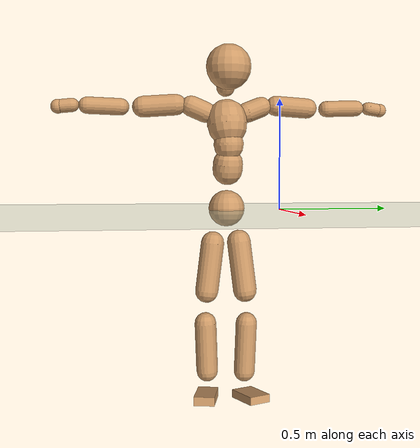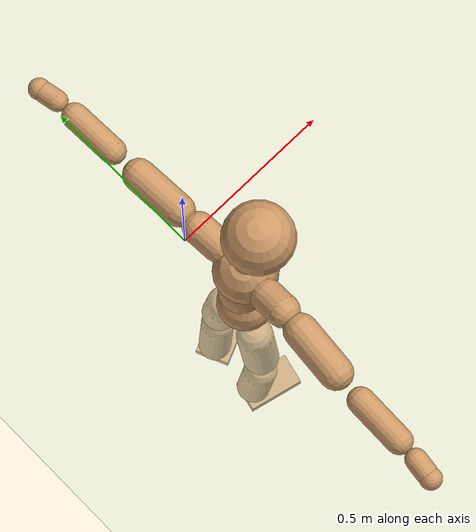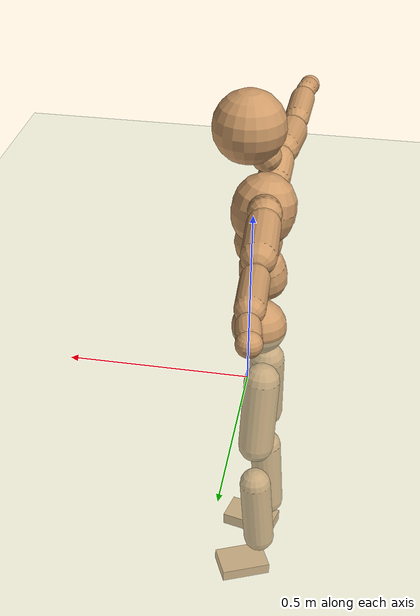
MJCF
<mujoco model="humanoid">
  <compiler coordinate="local" angle="radian"/>
  <default>
    <joint damping="0.0" armature="0.01" stiffness="0.0" limited="true"/>
    <geom conaffinity="1" condim="3" contype="7" margin="0.001" rgba="0.8 0.6 .4 1"/>
  </default>
  <asset>
    <texture type="skybox" builtin="gradient" rgb1=".4 .5 .6" rgb2="0 0 0" width="100" height="100"/>
    <texture builtin="flat" height="1278" mark="cross" markrgb="1 1 1" name="texgeom" random="0.01" rgb1="0.8 0.6 0.4" rgb2="0.8 0.6 0.4" type="cube" width="127"/>
    <texture builtin="checker" height="100" name="texplane" rgb1="0 0 0" rgb2="0.8 0.8 0.8" type="2d" width="100"/>
    <material name="MatPlane" reflectance="0.5" shininess="1" specular="1" texrepeat="60 60" texture="texplane"/>
    <material name="geom" texture="texgeom" texuniform="true"/>
  </asset>
  <worldbody>
    <light cutoff="100" diffuse="1 1 1" dir="-0 0 -1.3" directional="true" exponent="1" pos="0 0 1.3" specular=".1 .1 .1"/>
    <geom conaffinity="1" condim="3" name="floor" pos="0 0 0" rgba="0.8 0.9 0.8 1" size="100 100 .2" type="plane" material="MatPlane"/>
    <body name="Pelvis" pos="-0.0007 -0.2435 0.0061">
      <freejoint name="Pelvis"/>
      <geom type="sphere" contype="1" conaffinity="1" density="500" size="0.0816" pos="0.0000 0.0000 0.0000" name="Pelvis"/>
      <body name="L_Hip" pos="-0.0242 0.0503 -0.0784">
        <joint name="L_Hip_x" type="hinge" pos="0 0 0" axis="1 0 0" stiffness="800" damping="80" armature="0.02" range="-180.0000 180.0000"/>
        <joint name="L_Hip_y" type="hinge" pos="0 0 0" axis="0 1 0" stiffness="800" damping="80" armature="0.02" range="-180.0000 180.0000"/>
        <joint name="L_Hip_z" type="hinge" pos="0 0 0" axis="0 0 1" stiffness="800" damping="80" armature="0.02" range="-180.0000 180.0000"/>
        <geom type="capsule" contype="1" conaffinity="1" density="500" fromto="0.0022 0.0092 -0.0751 0.0090 0.0368 -0.3004" size="0.0534" name="L_Hip"/>
        <body name="L_Knee" pos="0.0112 0.046 -0.3755">
          <joint name="L_Knee_x" type="hinge" pos="0 0 0" axis="1 0 0" stiffness="800" damping="80" armature="0.02" range="-180.0000 180.0000"/>
          <joint name="L_Knee_y" type="hinge" pos="0 0 0" axis="0 1 0" stiffness="800" damping="80" armature="0.02" range="-180.0000 180.0000"/>
          <joint name="L_Knee_z" type="hinge" pos="0 0 0" axis="0 0 1" stiffness="800" damping="80" armature="0.02" range="-180.0000 180.0000"/>
          <geom type="capsule" contype="1" conaffinity="1" density="500" fromto="-0.0063 -0.0021 -0.0766 -0.0253 -0.0082 -0.3065" size="0.0484" name="L_Knee"/>
          <body name="L_Ankle" pos="-0.0317 -0.0103 -0.3831">
            <joint name="L_Ankle_x" type="hinge" pos="0 0 0" axis="1 0 0" stiffness="800" damping="80" armature="0.02" range="-180.0000 180.0000"/>
            <joint name="L_Ankle_y" type="hinge" pos="0 0 0" axis="0 1 0" stiffness="800" damping="80" armature="0.02" range="-180.0000 180.0000"/>
            <joint name="L_Ankle_z" type="hinge" pos="0 0 0" axis="0 0 1" stiffness="800" damping="80" armature="0.02" range="-180.0000 180.0000"/>
            <geom type="box" contype="1" conaffinity="1" density="500" pos="0.0553 0.0243 -0.0284" size="0.0771 0.0521 0.0184" quat="0.9787 0.0000 0.0000 0.2051" name="L_Ankle"/>
            <body name="L_Toe" pos="0.1106 0.0485 -0.0567">
              <joint name="L_Toe_x" type="hinge" pos="0 0 0" axis="1 0 0" stiffness="500" damping="50" armature="0.02" range="-180.0000 180.0000"/>
              <joint name="L_Toe_y" type="hinge" pos="0 0 0" axis="0 1 0" stiffness="500" damping="50" armature="0.02" range="-180.0000 180.0000"/>
              <joint name="L_Toe_z" type="hinge" pos="0 0 0" axis="0 0 1" stiffness="500" damping="50" armature="0.02" range="-180.0000 180.0000"/>
              <geom type="box" contype="1" conaffinity="1" density="500" pos="0.0000 0.0000 0.0311" size="0.001 0.0024 0.0011" quat="0.9779 0.0000 0.0000 0.2092" name="L_Toe"/>
            </body>
          </body>
        </body>
      </body>
      <body name="R_Hip" pos="-0.0226 -0.0519 -0.0855">
        <joint name="R_Hip_x" type="hinge" pos="0 0 0" axis="1 0 0" stiffness="800" damping="80" armature="0.02" range="-180.0000 180.0000"/>
        <joint name="R_Hip_y" type="hinge" pos="0 0 0" axis="0 1 0" stiffness="800" damping="80" armature="0.02" range="-180.0000 180.0000"/>
        <joint name="R_Hip_z" type="hinge" pos="0 0 0" axis="0 0 1" stiffness="800" damping="80" armature="0.02" range="-180.0000 180.0000"/>
        <geom type="capsule" contype="1" conaffinity="1" density="500" fromto="0.0001 -0.0091 -0.0735 0.0003 -0.0363 -0.2939" size="0.0528" name="R_Hip"/>
        <body name="R_Knee" pos="0.0004 -0.0454 -0.3673">
          <joint name="R_Knee_x" type="hinge" pos="0 0 0" axis="1 0 0" stiffness="800" damping="80" armature="0.02" range="-180.0000 180.0000"/>
          <joint name="R_Knee_y" type="hinge" pos="0 0 0" axis="0 1 0" stiffness="800" damping="80" armature="0.02" range="-180.0000 180.0000"/>
          <joint name="R_Knee_z" type="hinge" pos="0 0 0" axis="0 0 1" stiffness="800" damping="80" armature="0.02" range="-180.0000 180.0000"/>
          <geom type="capsule" contype="1" conaffinity="1" density="500" fromto="-0.0058 0.0032 -0.0754 -0.0233 0.0126 -0.3017" size="0.0493" name="R_Knee"/>
          <body name="R_Ankle" pos="-0.0291 0.0158 -0.3771">
            <joint name="R_Ankle_x" type="hinge" pos="0 0 0" axis="1 0 0" stiffness="800" damping="80" armature="0.02" range="-180.0000 180.0000"/>
            <joint name="R_Ankle_y" type="hinge" pos="0 0 0" axis="0 1 0" stiffness="800" damping="80" armature="0.02" range="-180.0000 180.0000"/>
            <joint name="R_Ankle_z" type="hinge" pos="0 0 0" axis="0 0 1" stiffness="800" damping="80" armature="0.02" range="-180.0000 180.0000"/>
            <geom type="box" contype="1" conaffinity="1" density="500" pos="0.0596 -0.0142 -0.0300" size="0.0837 0.0469 0.0201" quat="0.9932 0.0000 0.0000 -0.1164" name="R_Ankle"/>
            <body name="R_Toe" pos="0.1192 -0.0283 -0.0599">
              <joint name="R_Toe_x" type="hinge" pos="0 0 0" axis="1 0 0" stiffness="500" damping="50" armature="0.02" range="-180.0000 180.0000"/>
              <joint name="R_Toe_y" type="hinge" pos="0 0 0" axis="0 1 0" stiffness="500" damping="50" armature="0.02" range="-180.0000 180.0000"/>
              <joint name="R_Toe_z" type="hinge" pos="0 0 0" axis="0 0 1" stiffness="500" damping="50" armature="0.02" range="-180.0000 180.0000"/>
              <geom type="box" contype="1" conaffinity="1" density="500" pos="0.0000 0.0000 0.0326" size="0.0009 0.0023 0.0011" quat="0.9943 0.0000 0.0000 -0.1067" name="R_Toe"/>
            </body>
          </body>
        </body>
      </body>
      <body name="Torso" pos="-0.022 0.0037 0.1149">
        <joint name="Torso_x" type="hinge" pos="0 0 0" axis="1 0 0" stiffness="1000" damping="100" armature="0.02" range="-180.0000 180.0000"/>
        <joint name="Torso_y" type="hinge" pos="0 0 0" axis="0 1 0" stiffness="1000" damping="100" armature="0.02" range="-180.0000 180.0000"/>
        <joint name="Torso_z" type="hinge" pos="0 0 0" axis="0 0 1" stiffness="1000" damping="100" armature="0.02" range="-180.0000 180.0000"/>
        <geom type="capsule" contype="1" conaffinity="1" density="500" fromto="0.0198 0.0031 0.0863 0.0132 0.0021 0.0575" size="0.0675" name="Torso"/>
        <body name="Spine" pos="0.0331 0.0051 0.1438">
          <joint name="Spine_x" type="hinge" pos="0 0 0" axis="1 0 0" stiffness="1000" damping="100" armature="0.02" range="-180.0000 180.0000"/>
          <joint name="Spine_y" type="hinge" pos="0 0 0" axis="0 1 0" stiffness="1000" damping="100" armature="0.02" range="-180.0000 180.0000"/>
          <joint name="Spine_z" type="hinge" pos="0 0 0" axis="0 0 1" stiffness="1000" damping="100" armature="0.02" range="-180.0000 180.0000"/>
          <geom type="capsule" contype="1" conaffinity="1" density="500" fromto="0.0003 -0.0011 0.0346 0.0002 -0.0007 0.0231" size="0.067" name="Spine"/>
          <body name="Chest" pos="0.0004 -0.0019 0.0577">
            <joint name="Chest_x" type="hinge" pos="0 0 0" axis="1 0 0" stiffness="1000" damping="100" armature="0.02" range="-180.0000 180.0000"/>
            <joint name="Chest_y" type="hinge" pos="0 0 0" axis="0 1 0" stiffness="1000" damping="100" armature="0.02" range="-180.0000 180.0000"/>
            <joint name="Chest_z" type="hinge" pos="0 0 0" axis="0 0 1" stiffness="1000" damping="100" armature="0.02" range="-180.0000 180.0000"/>
            <geom type="capsule" contype="1" conaffinity="1" density="500" fromto="-0.0128 -0.0056 0.0827 -0.0085 -0.0037 0.0551" size="0.0898" name="Chest"/>
            <body name="Neck" pos="-0.0218 -0.0131 0.2038">
              <joint name="Neck_x" type="hinge" pos="0 0 0" axis="1 0 0" stiffness="500" damping="50" armature="0.02" range="-180.0000 180.0000"/>
              <joint name="Neck_y" type="hinge" pos="0 0 0" axis="0 1 0" stiffness="500" damping="50" armature="0.02" range="-180.0000 180.0000"/>
              <joint name="Neck_z" type="hinge" pos="0 0 0" axis="0 0 1" stiffness="500" damping="50" armature="0.02" range="-180.0000 180.0000"/>
              <geom type="capsule" contype="1" conaffinity="1" density="500" fromto="0.0116 0.0019 0.0210 0.0462 0.0076 0.0841" size="0.0418" name="Neck"/>
              <body name="Head" pos="0.0578 0.0095 0.1051">
                <joint name="Head_x" type="hinge" pos="0 0 0" axis="1 0 0" stiffness="500" damping="50" armature="0.02" range="-180.0000 180.0000"/>
                <joint name="Head_y" type="hinge" pos="0 0 0" axis="0 1 0" stiffness="500" damping="50" armature="0.02" range="-180.0000 180.0000"/>
                <joint name="Head_z" type="hinge" pos="0 0 0" axis="0 0 1" stiffness="500" damping="50" armature="0.02" range="-180.0000 180.0000"/>
                <geom type="sphere" contype="1" conaffinity="1" density="500" size="0.1006" pos="0.0000 0.0000 0.0000" name="Head"/>
              </body>
            </body>
            <body name="L_Thorax" pos="-0.0195 0.0648 0.1048">
              <joint name="L_Thorax_x" type="hinge" pos="0 0 0" axis="1 0 0" stiffness="500" damping="50" armature="0.02" range="-180.0000 180.0000"/>
              <joint name="L_Thorax_y" type="hinge" pos="0 0 0" axis="0 1 0" stiffness="500" damping="50" armature="0.02" range="-180.0000 180.0000"/>
              <joint name="L_Thorax_z" type="hinge" pos="0 0 0" axis="0 0 1" stiffness="500" damping="50" armature="0.02" range="-180.0000 180.0000"/>
              <geom type="capsule" contype="1" conaffinity="1" density="500" fromto="-0.0028 0.0222 0.0089 -0.0113 0.0887 0.0355" size="0.0457" name="L_Thorax"/>
              <body name="L_Shoulder" pos="-0.0141 0.1108 0.0444">
                <joint name="L_Shoulder_x" type="hinge" pos="0 0 0" axis="1 0 0" stiffness="500" damping="50" armature="0.02" range="-720.0000 720.0000"/>
                <joint name="L_Shoulder_y" type="hinge" pos="0 0 0" axis="0 1 0" stiffness="500" damping="50" armature="0.02" range="-720.0000 720.0000"/>
                <joint name="L_Shoulder_z" type="hinge" pos="0 0 0" axis="0 0 1" stiffness="500" damping="50" armature="0.02" range="-720.0000 720.0000"/>
                <geom type="capsule" contype="1" conaffinity="1" density="500" fromto="-0.0024 0.0482 -0.0029 -0.0095 0.1928 -0.0117" size="0.0457" name="L_Shoulder"/>
                <body name="L_Elbow" pos="-0.0119 0.241 -0.0146">
                  <joint name="L_Elbow_x" type="hinge" pos="0 0 0" axis="1 0 0" stiffness="500" damping="50" armature="0.02" range="-720.0000 720.0000"/>
                  <joint name="L_Elbow_y" type="hinge" pos="0 0 0" axis="0 1 0" stiffness="500" damping="50" armature="0.02" range="-720.0000 720.0000"/>
                  <joint name="L_Elbow_z" type="hinge" pos="0 0 0" axis="0 0 1" stiffness="500" damping="50" armature="0.02" range="-720.0000 720.0000"/>
                  <geom type="capsule" contype="1" conaffinity="1" density="500" fromto="-0.0022 0.0468 0.0017 -0.0089 0.1873 0.0068" size="0.0366" name="L_Elbow"/>
                  <body name="L_Wrist" pos="-0.0112 0.2342 0.0086">
                    <joint name="L_Wrist_x" type="hinge" pos="0 0 0" axis="1 0 0" stiffness="300" damping="30" armature="0.02" range="-180.0000 180.0000"/>
                    <joint name="L_Wrist_y" type="hinge" pos="0 0 0" axis="0 1 0" stiffness="300" damping="30" armature="0.02" range="-180.0000 180.0000"/>
                    <joint name="L_Wrist_z" type="hinge" pos="0 0 0" axis="0 0 1" stiffness="300" damping="30" armature="0.02" range="-180.0000 180.0000"/>
                    <geom type="capsule" contype="1" conaffinity="1" density="500" fromto="-0.0027 0.0150 -0.0018 -0.0106 0.0598 -0.0074" size="0.0296" name="L_Wrist"/>
                    <body name="L_Hand" pos="-0.0133 0.0748 -0.0092">
                      <joint name="L_Hand_x" type="hinge" pos="0 0 0" axis="1 0 0" stiffness="300" damping="30" armature="0.02" range="-180.0000 180.0000"/>
                      <joint name="L_Hand_y" type="hinge" pos="0 0 0" axis="0 1 0" stiffness="300" damping="30" armature="0.02" range="-180.0000 180.0000"/>
                      <joint name="L_Hand_z" type="hinge" pos="0 0 0" axis="0 0 1" stiffness="300" damping="30" armature="0.02" range="-180.0000 180.0000"/>
                      <geom type="sphere" contype="1" conaffinity="1" density="500" size="0.0309" pos="0.0000 0.0000 0.0000" name="L_Hand"/>
                    </body>
                  </body>
                </body>
              </body>
            </body>
            <body name="R_Thorax" pos="-0.0229 -0.0797 0.1047">
              <joint name="R_Thorax_x" type="hinge" pos="0 0 0" axis="1 0 0" stiffness="500" damping="50" armature="0.02" range="-180.0000 180.0000"/>
              <joint name="R_Thorax_y" type="hinge" pos="0 0 0" axis="0 1 0" stiffness="500" damping="50" armature="0.02" range="-180.0000 180.0000"/>
              <joint name="R_Thorax_z" type="hinge" pos="0 0 0" axis="0 0 1" stiffness="500" damping="50" armature="0.02" range="-180.0000 180.0000"/>
              <geom type="capsule" contype="1" conaffinity="1" density="500" fromto="-0.0010 -0.0209 0.0090 -0.0039 -0.0838 0.0360" size="0.0467" name="R_Thorax"/>
              <body name="R_Shoulder" pos="-0.0049 -0.1047 0.045">
                <joint name="R_Shoulder_x" type="hinge" pos="0 0 0" axis="1 0 0" stiffness="500" damping="50" armature="0.02" range="-720.0000 720.0000"/>
                <joint name="R_Shoulder_y" type="hinge" pos="0 0 0" axis="0 1 0" stiffness="500" damping="50" armature="0.02" range="-720.0000 720.0000"/>
                <joint name="R_Shoulder_z" type="hinge" pos="0 0 0" axis="0 0 1" stiffness="500" damping="50" armature="0.02" range="-720.0000 720.0000"/>
                <geom type="capsule" contype="1" conaffinity="1" density="500" fromto="-0.0037 -0.0484 -0.0032 -0.0148 -0.1936 -0.0130" size="0.0476" name="R_Shoulder"/>
                <body name="R_Elbow" pos="-0.0185 -0.242 -0.0162">
                  <joint name="R_Elbow_x" type="hinge" pos="0 0 0" axis="1 0 0" stiffness="500" damping="50" armature="0.02" range="-720.0000 720.0000"/>
                  <joint name="R_Elbow_y" type="hinge" pos="0 0 0" axis="0 1 0" stiffness="500" damping="50" armature="0.02" range="-720.0000 720.0000"/>
                  <joint name="R_Elbow_z" type="hinge" pos="0 0 0" axis="0 0 1" stiffness="500" damping="50" armature="0.02" range="-720.0000 720.0000"/>
                  <geom type="capsule" contype="1" conaffinity="1" density="500" fromto="-0.0013 -0.0490 0.0018 -0.0052 -0.1958 0.0073" size="0.0378" name="R_Elbow"/>
                  <body name="R_Wrist" pos="-0.0066 -0.2448 0.0091">
                    <joint name="R_Wrist_x" type="hinge" pos="0 0 0" axis="1 0 0" stiffness="300" damping="30" armature="0.02" range="-180.0000 180.0000"/>
                    <joint name="R_Wrist_y" type="hinge" pos="0 0 0" axis="0 1 0" stiffness="300" damping="30" armature="0.02" range="-180.0000 180.0000"/>
                    <joint name="R_Wrist_z" type="hinge" pos="0 0 0" axis="0 0 1" stiffness="300" damping="30" armature="0.02" range="-180.0000 180.0000"/>
                    <geom type="capsule" contype="1" conaffinity="1" density="500" fromto="-0.0018 -0.0156 -0.0015 -0.0071 -0.0625 -0.0058" size="0.0306" name="R_Wrist"/>
                    <body name="R_Hand" pos="-0.0089 -0.0781 -0.0073">
                      <joint name="R_Hand_x" type="hinge" pos="0 0 0" axis="1 0 0" stiffness="300" damping="30" armature="0.02" range="-180.0000 180.0000"/>
                      <joint name="R_Hand_y" type="hinge" pos="0 0 0" axis="0 1 0" stiffness="300" damping="30" armature="0.02" range="-180.0000 180.0000"/>
                      <joint name="R_Hand_z" type="hinge" pos="0 0 0" axis="0 0 1" stiffness="300" damping="30" armature="0.02" range="-180.0000 180.0000"/>
                      <geom type="sphere" contype="1" conaffinity="1" density="500" size="0.0318" pos="0.0000 0.0000 0.0000" name="R_Hand"/>
                    </body>
                  </body>
                </body>
              </body>
            </body>
          </body>
        </body>
      </body>
    </body>
  </worldbody>
  <actuator>
    <motor name="L_Hip_x" joint="L_Hip_x" gear="500"/>
    <motor name="L_Hip_y" joint="L_Hip_y" gear="500"/>
    <motor name="L_Hip_z" joint="L_Hip_z" gear="500"/>
    <motor name="L_Knee_x" joint="L_Knee_x" gear="500"/>
    <motor name="L_Knee_y" joint="L_Knee_y" gear="500"/>
    <motor name="L_Knee_z" joint="L_Knee_z" gear="500"/>
    <motor name="L_Ankle_x" joint="L_Ankle_x" gear="500"/>
    <motor name="L_Ankle_y" joint="L_Ankle_y" gear="500"/>
    <motor name="L_Ankle_z" joint="L_Ankle_z" gear="500"/>
    <motor name="L_Toe_x" joint="L_Toe_x" gear="500"/>
    <motor name="L_Toe_y" joint="L_Toe_y" gear="500"/>
    <motor name="L_Toe_z" joint="L_Toe_z" gear="500"/>
    <motor name="R_Hip_x" joint="R_Hip_x" gear="500"/>
    <motor name="R_Hip_y" joint="R_Hip_y" gear="500"/>
    <motor name="R_Hip_z" joint="R_Hip_z" gear="500"/>
    <motor name="R_Knee_x" joint="R_Knee_x" gear="500"/>
    <motor name="R_Knee_y" joint="R_Knee_y" gear="500"/>
    <motor name="R_Knee_z" joint="R_Knee_z" gear="500"/>
    <motor name="R_Ankle_x" joint="R_Ankle_x" gear="500"/>
    <motor name="R_Ankle_y" joint="R_Ankle_y" gear="500"/>
    <motor name="R_Ankle_z" joint="R_Ankle_z" gear="500"/>
    <motor name="R_Toe_x" joint="R_Toe_x" gear="500"/>
    <motor name="R_Toe_y" joint="R_Toe_y" gear="500"/>
    <motor name="R_Toe_z" joint="R_Toe_z" gear="500"/>
    <motor name="Torso_x" joint="Torso_x" gear="500"/>
    <motor name="Torso_y" joint="Torso_y" gear="500"/>
    <motor name="Torso_z" joint="Torso_z" gear="500"/>
    <motor name="Spine_x" joint="Spine_x" gear="500"/>
    <motor name="Spine_y" joint="Spine_y" gear="500"/>
    <motor name="Spine_z" joint="Spine_z" gear="500"/>
    <motor name="Chest_x" joint="Chest_x" gear="500"/>
    <motor name="Chest_y" joint="Chest_y" gear="500"/>
    <motor name="Chest_z" joint="Chest_z" gear="500"/>
    <motor name="Neck_x" joint="Neck_x" gear="500"/>
    <motor name="Neck_y" joint="Neck_y" gear="500"/>
    <motor name="Neck_z" joint="Neck_z" gear="500"/>
    <motor name="Head_x" joint="Head_x" gear="500"/>
    <motor name="Head_y" joint="Head_y" gear="500"/>
    <motor name="Head_z" joint="Head_z" gear="500"/>
    <motor name="L_Thorax_x" joint="L_Thorax_x" gear="500"/>
    <motor name="L_Thorax_y" joint="L_Thorax_y" gear="500"/>
    <motor name="L_Thorax_z" joint="L_Thorax_z" gear="500"/>
    <motor name="L_Shoulder_x" joint="L_Shoulder_x" gear="500"/>
    <motor name="L_Shoulder_y" joint="L_Shoulder_y" gear="500"/>
    <motor name="L_Shoulder_z" joint="L_Shoulder_z" gear="500"/>
    <motor name="L_Elbow_x" joint="L_Elbow_x" gear="500"/>
    <motor name="L_Elbow_y" joint="L_Elbow_y" gear="500"/>
    <motor name="L_Elbow_z" joint="L_Elbow_z" gear="500"/>
    <motor name="L_Wrist_x" joint="L_Wrist_x" gear="500"/>
    <motor name="L_Wrist_y" joint="L_Wrist_y" gear="500"/>
    <motor name="L_Wrist_z" joint="L_Wrist_z" gear="500"/>
    <motor name="L_Hand_x" joint="L_Hand_x" gear="500"/>
    <motor name="L_Hand_y" joint="L_Hand_y" gear="500"/>
    <motor name="L_Hand_z" joint="L_Hand_z" gear="500"/>
    <motor name="R_Thorax_x" joint="R_Thorax_x" gear="500"/>
    <motor name="R_Thorax_y" joint="R_Thorax_y" gear="500"/>
    <motor name="R_Thorax_z" joint="R_Thorax_z" gear="500"/>
    <motor name="R_Shoulder_x" joint="R_Shoulder_x" gear="500"/>
    <motor name="R_Shoulder_y" joint="R_Shoulder_y" gear="500"/>
    <motor name="R_Shoulder_z" joint="R_Shoulder_z" gear="500"/>
    <motor name="R_Elbow_x" joint="R_Elbow_x" gear="500"/>
    <motor name="R_Elbow_y" joint="R_Elbow_y" gear="500"/>
    <motor name="R_Elbow_z" joint="R_Elbow_z" gear="500"/>
    <motor name="R_Wrist_x" joint="R_Wrist_x" gear="500"/>
    <motor name="R_Wrist_y" joint="R_Wrist_y" gear="500"/>
    <motor name="R_Wrist_z" joint="R_Wrist_z" gear="500"/>
    <motor name="R_Hand_x" joint="R_Hand_x" gear="500"/>
    <motor name="R_Hand_y" joint="R_Hand_y" gear="500"/>
    <motor name="R_Hand_z" joint="R_Hand_z" gear="500"/>
  </actuator>
  <contact>
    <exclude body1="Torso" body2="Chest"/>
    <exclude body1="Head" body2="Chest"/>
    <exclude body1="R_Knee" body2="R_Toe"/>
    <exclude body1="R_Knee" body2="L_Ankle"/>
    <exclude body1="R_Knee" body2="L_Toe"/>
    <exclude body1="L_Knee" body2="L_Toe"/>
    <exclude body1="L_Knee" body2="R_Ankle"/>
    <exclude body1="L_Knee" body2="R_Toe"/>
    <exclude body1="L_Shoulder" body2="Chest"/>
    <exclude body1="R_Shoulder" body2="Chest"/>
  </contact>
  <sensor/>
  <size njmax="700" nconmax="700"/>
</mujoco>
